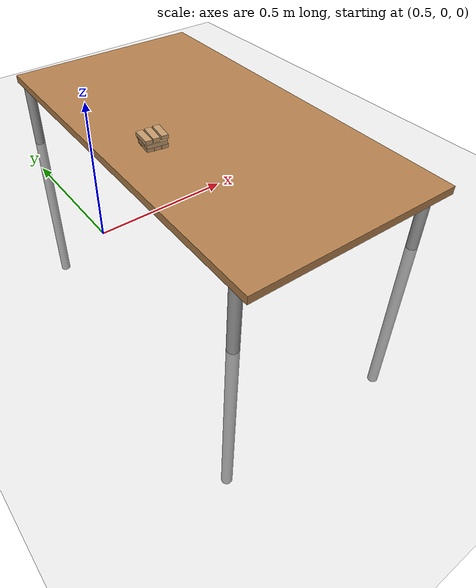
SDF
<sdf version="1.7">
 <world name="default">
  <light name="sun" type="directional">
   <pose>0 0 10 0 -0 0</pose>
   <diffuse>0.8 0.8 0.8 1</diffuse>
   <specular>0.2 0.2 0.2 1</specular>
   <attenuation>
    <range>1000</range>
    <constant>0.9</constant>
    <linear>0.01</linear>
    <quadratic>0.001</quadratic>
   </attenuation>
   <direction>-0.5 0.1 -0.9</direction>
   <spot><inner_angle>0</inner_angle><outer_angle>0</outer_angle><falloff>0</falloff></spot>
  </light>
  <model name="ground_plane">
   <static>1</static>
   <link name="link">
    <collision name="collision">
     <geometry><plane><normal>0 0 1</normal><size>100 100</size></plane></geometry>
     <surface><friction><ode><mu>100</mu><mu2>50</mu2></ode></friction></surface>
    </collision>
    <visual name="visual">
     <cast_shadows>0</cast_shadows>
     <geometry><plane><normal>0 0 1</normal><size>100 100</size></plane></geometry>
     <material>
      <script><uri>file://media/materials/scripts/gazebo.material</uri><name>Gazebo/Grey</name></script>
     </material>
    </visual>
   </link>
  </model>
  <gravity>0 0 -9.8</gravity>
  <magnetic_field>6e-06 2.3e-05 -4.2e-05</magnetic_field>
  <atmosphere type="adiabatic"/>
  <physics type="ode">
   <max_step_size>0.001</max_step_size>
   <real_time_factor>1</real_time_factor>
   <real_time_update_rate>1000</real_time_update_rate>
  </physics>
  <scene><ambient>0.4 0.4 0.4 1</ambient><background>0.7 0.7 0.7 1</background><shadows>1</shadows></scene>
  <audio><device>default</device></audio>
  <spherical_coordinates>
   <surface_model>EARTH_WGS84</surface_model>
   <latitude_deg>0</latitude_deg>
   <longitude_deg>0</longitude_deg>
   <elevation>0</elevation>
   <heading_deg>0</heading_deg>
  </spherical_coordinates>
  <model name="table">
   <static>1</static>
   <link name="link">
    <collision name="surface">
     <pose>0 0 1 0 -0 0</pose>
     <geometry><box><size>1.5 0.8 0.03</size></box></geometry>
     <surface><friction><ode><mu>0.6</mu><mu2>0.6</mu2></ode></friction></surface>
    </collision>
    <visual name="visual1">
     <pose>0 0 1 0 -0 0</pose>
     <geometry><box><size>1.5 0.8 0.03</size></box></geometry>
     <material>
      <script><uri>file://media/materials/scripts/gazebo.material</uri><name>Gazebo/Wood</name></script>
     </material>
    </visual>
    <collision name="front_left_leg">
     <pose>0.68 0.38 0.5 0 -0 0</pose>
     <geometry><cylinder><radius>0.02</radius><length>1</length></cylinder></geometry>
    </collision>
    <visual name="front_left_leg">
     <pose>0.68 0.38 0.5 0 -0 0</pose>
     <geometry><cylinder><radius>0.02</radius><length>1</length></cylinder></geometry>
     <material>
      <script><uri>file://media/materials/scripts/gazebo.material</uri><name>Gazebo/Grey</name></script>
     </material>
    </visual>
    <collision name="front_right_leg">
     <pose>0.68 -0.38 0.5 0 -0 0</pose>
     <geometry><cylinder><radius>0.02</radius><length>1</length></cylinder></geometry>
    </collision>
    <visual name="front_right_leg">
     <pose>0.68 -0.38 0.5 0 -0 0</pose>
     <geometry><cylinder><radius>0.02</radius><length>1</length></cylinder></geometry>
     <material>
      <script><uri>file://media/materials/scripts/gazebo.material</uri><name>Gazebo/Grey</name></script>
     </material>
    </visual>
    <collision name="back_right_leg">
     <pose>-0.68 -0.38 0.5 0 -0 0</pose>
     <geometry><cylinder><radius>0.02</radius><length>1</length></cylinder></geometry>
    </collision>
    <visual name="back_right_leg">
     <pose>-0.68 -0.38 0.5 0 -0 0</pose>
     <geometry><cylinder><radius>0.02</radius><length>1</length></cylinder></geometry>
     <material>
      <script><uri>file://media/materials/scripts/gazebo.material</uri><name>Gazebo/Grey</name></script>
     </material>
    </visual>
    <collision name="back_left_leg">
     <pose>-0.68 0.38 0.5 0 -0 0</pose>
     <geometry><cylinder><radius>0.02</radius><length>1</length></cylinder></geometry>
    </collision>
    <visual name="back_left_leg">
     <pose>-0.68 0.38 0.5 0 -0 0</pose>
     <geometry><cylinder><radius>0.02</radius><length>1</length></cylinder></geometry>
     <material>
      <script><uri>file://media/materials/scripts/gazebo.material</uri><name>Gazebo/Grey</name></script>
     </material>
    </visual>
   </link>
   <pose>0.943376 0.010614 -0.734154 0 -0 1.54981</pose>
  </model>
  <model name="jenga_block">
   <static>0</static>
   <link name="link">
    <inertial>
     <mass>0.1</mass>
     <inertia>
      <ixx>0.00026042</ixx>
      <ixy>0</ixy>
      <ixz>0</ixz>
      <iyy>0.00010417</iyy>
      <iyz>0</iyz>
      <izz>0.00039063</izz>
     </inertia>
    </inertial>
    <collision name="collision"><geometry><box><size>0.025 0.075 0.015</size></box></geometry></collision>
    <visual name="visual">
     <geometry><box><size>0.025 0.075 0.015</size></box></geometry>
     <material>
      <ambient>0.76 0.6 0.42 1</ambient>
      <diffuse>0.76 0.6 0.42 1</diffuse>
      <specular>0.1 0.1 0.1 1</specular>
     </material>
    </visual>
   </link>
   <pose>0.744637 -0.011076 0.288346 0 6e-06 -0.122605</pose>
  </model>
  <model name="jenga_block_0">
   <static>0</static>
   <link name="link">
    <inertial>
     <mass>0.1</mass>
     <inertia>
      <ixx>0.00026042</ixx>
      <ixy>0</ixy>
      <ixz>0</ixz>
      <iyy>0.00010417</iyy>
      <iyz>0</iyz>
      <izz>0.00039063</izz>
     </inertia>
    </inertial>
    <collision name="collision"><geometry><box><size>0.025 0.075 0.015</size></box></geometry></collision>
    <visual name="visual">
     <geometry><box><size>0.025 0.075 0.015</size></box></geometry>
     <material>
      <ambient>0.76 0.6 0.42 1</ambient>
      <diffuse>0.76 0.6 0.42 1</diffuse>
      <specular>0.1 0.1 0.1 1</specular>
     </material>
    </visual>
   </link>
   <pose>0.718563 -0.006373 0.288346 0 -0 -0.132505</pose>
  </model>
  <model name="jenga_block_1">
   <static>0</static>
   <link name="link">
    <inertial>
     <mass>0.1</mass>
     <inertia>
      <ixx>0.00026042</ixx>
      <ixy>0</ixy>
      <ixz>0</ixz>
      <iyy>0.00010417</iyy>
      <iyz>0</iyz>
      <izz>0.00039063</izz>
     </inertia>
    </inertial>
    <collision name="collision"><geometry><box><size>0.025 0.075 0.015</size></box></geometry></collision>
    <visual name="visual">
     <geometry><box><size>0.025 0.075 0.015</size></box></geometry>
     <material>
      <ambient>0.76 0.6 0.42 1</ambient>
      <diffuse>0.76 0.6 0.42 1</diffuse>
      <specular>0.1 0.1 0.1 1</specular>
     </material>
    </visual>
   </link>
   <pose>0.717913 -0.005249 0.318347 0.000103 -0 -0.156886</pose>
  </model>
  <model name="jenga_block_2">
   <static>0</static>
   <link name="link">
    <inertial>
     <mass>0.1</mass>
     <inertia>
      <ixx>0.00026042</ixx>
      <ixy>0</ixy>
      <ixz>0</ixz>
      <iyy>0.00010417</iyy>
      <iyz>0</iyz>
      <izz>0.00039063</izz>
     </inertia>
    </inertial>
    <collision name="collision"><geometry><box><size>0.025 0.075 0.015</size></box></geometry></collision>
    <visual name="visual">
     <geometry><box><size>0.025 0.075 0.015</size></box></geometry>
     <material>
      <ambient>0.76 0.6 0.42 1</ambient>
      <diffuse>0.76 0.6 0.42 1</diffuse>
      <specular>0.1 0.1 0.1 1</specular>
     </material>
    </visual>
   </link>
   <pose>0.69397 -0.001546 0.288346 3.14159 1.4e-05 3.00932</pose>
  </model>
  <model name="jenga_block_3">
   <static>0</static>
   <link name="link">
    <inertial>
     <mass>0.1</mass>
     <inertia>
      <ixx>0.00026042</ixx>
      <ixy>0</ixy>
      <ixz>0</ixz>
      <iyy>0.00010417</iyy>
      <iyz>0</iyz>
      <izz>0.00039063</izz>
     </inertia>
    </inertial>
    <collision name="collision"><geometry><box><size>0.025 0.075 0.015</size></box></geometry></collision>
    <visual name="visual">
     <geometry><box><size>0.025 0.075 0.015</size></box></geometry>
     <material>
      <ambient>0.76 0.6 0.42 1</ambient>
      <diffuse>0.76 0.6 0.42 1</diffuse>
      <specular>0.1 0.1 0.1 1</specular>
     </material>
    </visual>
   </link>
   <pose>0.687033 -0.00398 0.318346 0.000348 -0.000178 -0.097093</pose>
  </model>
  <model name="jenga_block_4">
   <static>0</static>
   <link name="link">
    <inertial>
     <mass>0.1</mass>
     <inertia>
      <ixx>0.00026042</ixx>
      <ixy>0</ixy>
      <ixz>0</ixz>
      <iyy>0.00010417</iyy>
      <iyz>0</iyz>
      <izz>0.00039063</izz>
     </inertia>
    </inertial>
    <collision name="collision"><geometry><box><size>0.025 0.075 0.015</size></box></geometry></collision>
    <visual name="visual">
     <geometry><box><size>0.025 0.075 0.015</size></box></geometry>
     <material>
      <ambient>0.76 0.6 0.42 1</ambient>
      <diffuse>0.76 0.6 0.42 1</diffuse>
      <specular>0.1 0.1 0.1 1</specular>
     </material>
    </visual>
   </link>
   <pose>0.749194 -0.006201 0.31834 -3.14153 -6.3e-05 2.98652</pose>
  </model>
  <model name="jenga_block_5">
   <static>0</static>
   <link name="link">
    <inertial>
     <mass>0.1</mass>
     <inertia>
      <ixx>0.00026042</ixx>
      <ixy>0</ixy>
      <ixz>0</ixz>
      <iyy>0.00010417</iyy>
      <iyz>0</iyz>
      <izz>0.00039063</izz>
     </inertia>
    </inertial>
    <collision name="collision"><geometry><box><size>0.025 0.075 0.015</size></box></geometry></collision>
    <visual name="visual">
     <geometry><box><size>0.025 0.075 0.015</size></box></geometry>
     <material>
      <ambient>0.76 0.6 0.42 1</ambient>
      <diffuse>0.76 0.6 0.42 1</diffuse>
      <specular>0.1 0.1 0.1 1</specular>
     </material>
    </visual>
   </link>
   <pose>0.712137 -0.004769 0.303346 -3.14143 -1.6e-05 -1.72207</pose>
  </model>
  <model name="jenga_block_6">
   <static>0</static>
   <link name="link">
    <inertial>
     <mass>0.1</mass>
     <inertia>
      <ixx>0.00026042</ixx>
      <ixy>0</ixy>
      <ixz>0</ixz>
      <iyy>0.00010417</iyy>
      <iyz>0</iyz>
      <izz>0.00039063</izz>
     </inertia>
    </inertial>
    <collision name="collision"><geometry><box><size>0.025 0.075 0.015</size></box></geometry></collision>
    <visual name="visual">
     <geometry><box><size>0.025 0.075 0.015</size></box></geometry>
     <material>
      <ambient>0.76 0.6 0.42 1</ambient>
      <diffuse>0.76 0.6 0.42 1</diffuse>
      <specular>0.1 0.1 0.1 1</specular>
     </material>
    </visual>
   </link>
   <pose>0.713055 -0.033493 0.303336 -3.14146 -4.2e-05 -1.71329</pose>
  </model>
  <model name="jenga_block_7">
   <static>0</static>
   <link name="link">
    <inertial>
     <mass>0.1</mass>
     <inertia>
      <ixx>0.00026042</ixx>
      <ixy>0</ixy>
      <ixz>0</ixz>
      <iyy>0.00010417</iyy>
      <iyz>0</iyz>
      <izz>0.00039063</izz>
     </inertia>
    </inertial>
    <collision name="collision"><geometry><box><size>0.025 0.075 0.015</size></box></geometry></collision>
    <visual name="visual">
     <geometry><box><size>0.025 0.075 0.015</size></box></geometry>
     <material>
      <ambient>0.76 0.6 0.42 1</ambient>
      <diffuse>0.76 0.6 0.42 1</diffuse>
      <specular>0.1 0.1 0.1 1</specular>
     </material>
    </visual>
   </link>
   <pose>0.721592 0.025526 0.303333 0.000321 0.000118 1.37022</pose>
  </model>
 </world>
</sdf>
